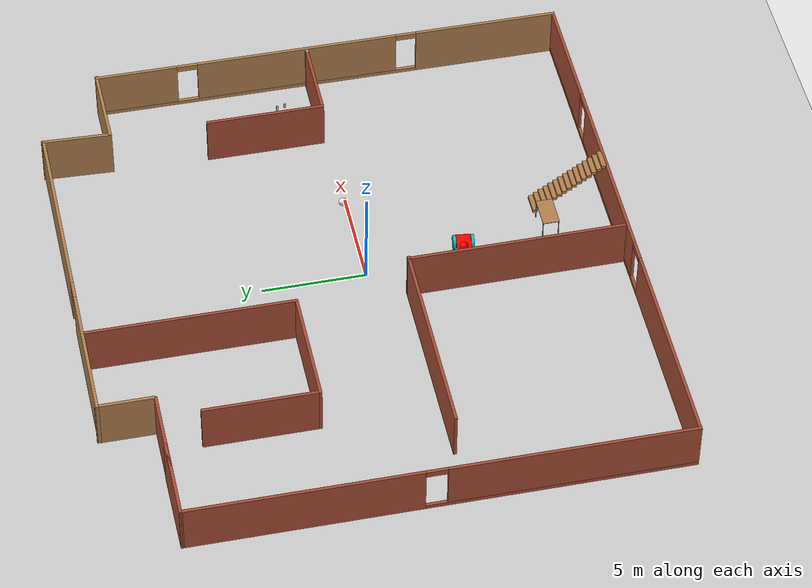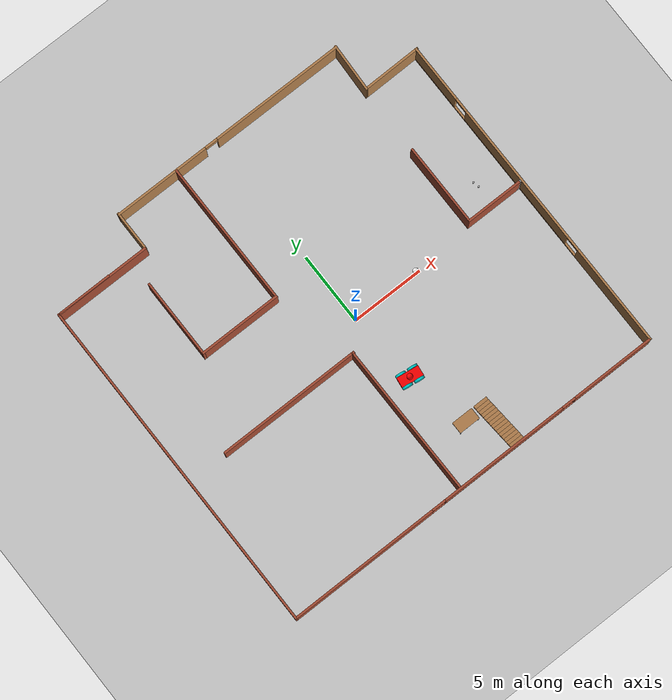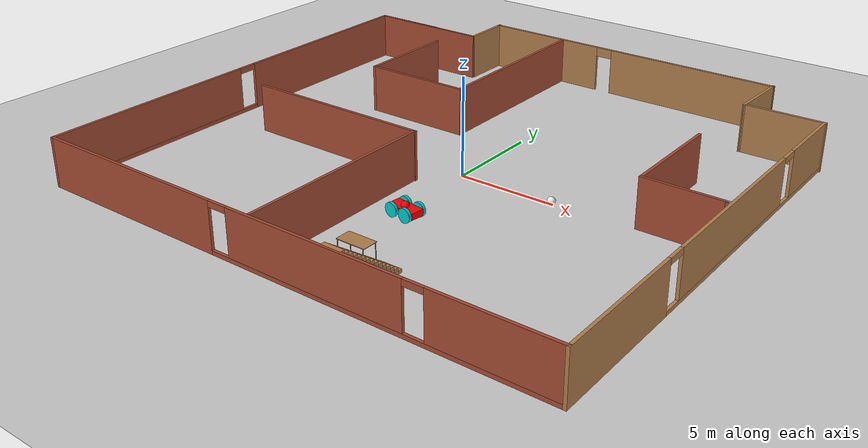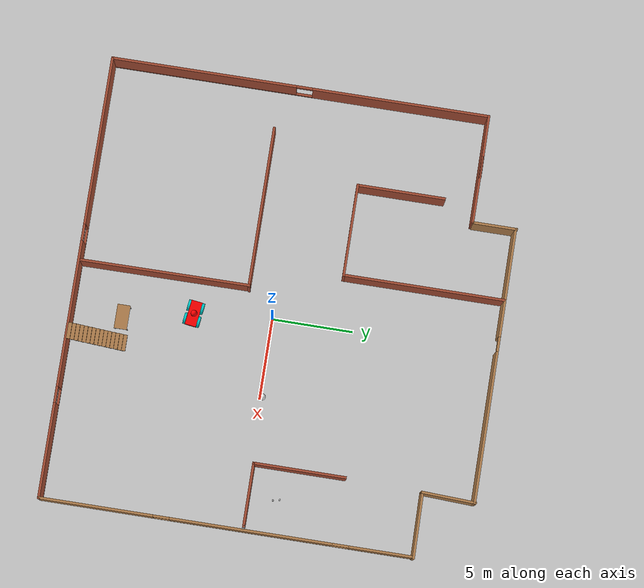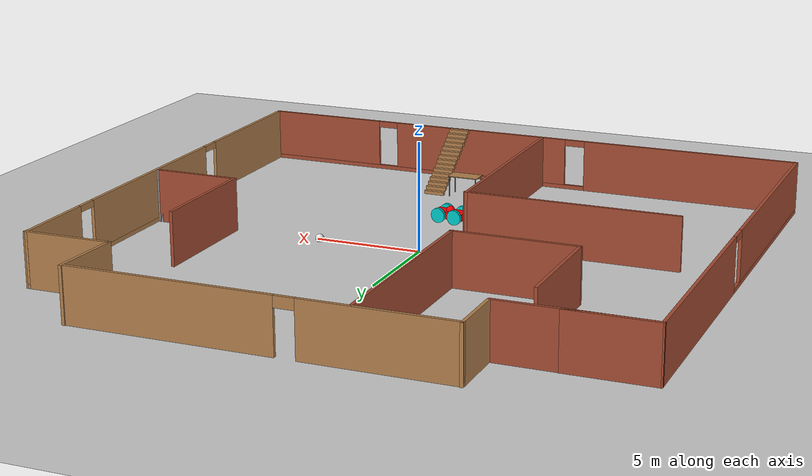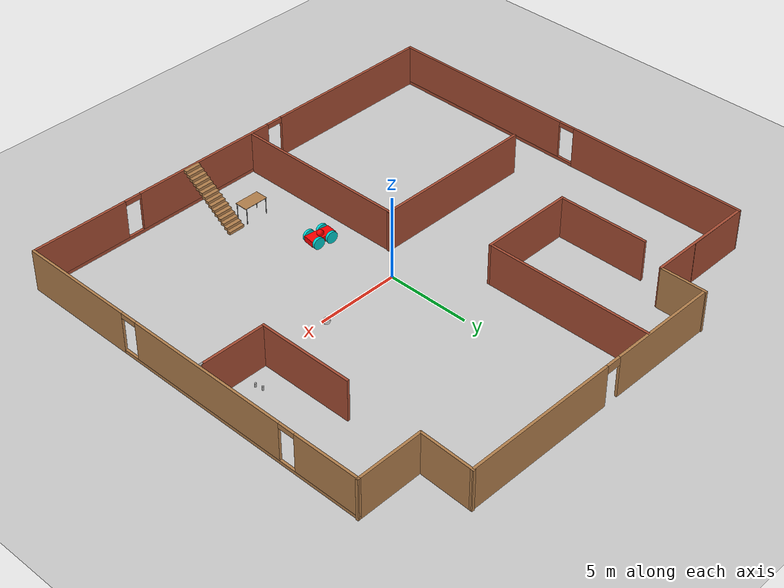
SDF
<sdf version="1.6">
 <world name="default">
  <model name="ground_plane">
   <static>1</static>
   <link name="link">
    <collision name="collision">
     <geometry><plane><normal>0 0 1</normal><size>100 100</size></plane></geometry>
     <surface>
      <contact><collide_bitmask>65535</collide_bitmask></contact>
      <friction><ode><mu>100</mu><mu2>50</mu2></ode></friction>
     </surface>
    </collision>
    <visual name="visual">
     <cast_shadows>0</cast_shadows>
     <geometry><plane><normal>0 0 1</normal><size>100 100</size></plane></geometry>
     <material>
      <script><uri>file://media/materials/scripts/gazebo.material</uri><name>Gazebo/Grey</name></script>
     </material>
    </visual>
   </link>
  </model>
  <model name="Office">
   <pose>-0.484509 0.848568 0 0 -0 0</pose>
   <link name="Stairs_0">
    <visual name="Stairs_0_Visual_0">
     <pose>3.3493 -9.60341 0.083333 0 -0 0</pose>
     <geometry><box><size>1 0.233333 0.166667</size></box></geometry>
     <material>
      <script><uri>file://media/materials/scripts/gazebo.material</uri><name>Gazebo/Wood</name></script>
      <ambient>1 1 1 1</ambient>
     </material>
     <meta><layer>0</layer></meta>
    </visual>
    <collision name="Stairs_0_Collision_0">
     <geometry><box><size>1 0.233333 0.166667</size></box></geometry>
     <pose>3.3493 -9.60341 0.083333 0 -0 0</pose>
    </collision>
    <visual name="Stairs_0_Visual_1">
     <pose>3.3493 -9.83674 0.25 0 -0 0</pose>
     <geometry><box><size>1 0.233333 0.166667</size></box></geometry>
     <material>
      <script><uri>file://media/materials/scripts/gazebo.material</uri><name>Gazebo/Wood</name></script>
      <ambient>1 1 1 1</ambient>
     </material>
     <meta><layer>0</layer></meta>
    </visual>
    <collision name="Stairs_0_Collision_1">
     <geometry><box><size>1 0.233333 0.166667</size></box></geometry>
     <pose>3.3493 -9.83674 0.25 0 -0 0</pose>
    </collision>
    <visual name="Stairs_0_Visual_2">
     <pose>3.3493 -10.0701 0.416667 0 -0 0</pose>
     <geometry><box><size>1 0.233333 0.166667</size></box></geometry>
     <material>
      <script><uri>file://media/materials/scripts/gazebo.material</uri><name>Gazebo/Wood</name></script>
      <ambient>1 1 1 1</ambient>
     </material>
     <meta><layer>0</layer></meta>
    </visual>
    <collision name="Stairs_0_Collision_2">
     <geometry><box><size>1 0.233333 0.166667</size></box></geometry>
     <pose>3.3493 -10.0701 0.416667 0 -0 0</pose>
    </collision>
    <visual name="Stairs_0_Visual_3">
     <pose>3.3493 -10.3034 0.583333 0 -0 0</pose>
     <geometry><box><size>1 0.233333 0.166667</size></box></geometry>
     <material>
      <script><uri>file://media/materials/scripts/gazebo.material</uri><name>Gazebo/Wood</name></script>
      <ambient>1 1 1 1</ambient>
     </material>
     <meta><layer>0</layer></meta>
    </visual>
    <collision name="Stairs_0_Collision_3">
     <geometry><box><size>1 0.233333 0.166667</size></box></geometry>
     <pose>3.3493 -10.3034 0.583333 0 -0 0</pose>
    </collision>
    <visual name="Stairs_0_Visual_4">
     <pose>3.3493 -10.5367 0.75 0 -0 0</pose>
     <geometry><box><size>1 0.233333 0.166667</size></box></geometry>
     <material>
      <script><uri>file://media/materials/scripts/gazebo.material</uri><name>Gazebo/Wood</name></script>
      <ambient>1 1 1 1</ambient>
     </material>
     <meta><layer>0</layer></meta>
    </visual>
    <collision name="Stairs_0_Collision_4">
     <geometry><box><size>1 0.233333 0.166667</size></box></geometry>
     <pose>3.3493 -10.5367 0.75 0 -0 0</pose>
    </collision>
    <visual name="Stairs_0_Visual_5">
     <pose>3.3493 -10.7701 0.916667 0 -0 0</pose>
     <geometry><box><size>1 0.233333 0.166667</size></box></geometry>
     <material>
      <script><uri>file://media/materials/scripts/gazebo.material</uri><name>Gazebo/Wood</name></script>
      <ambient>1 1 1 1</ambient>
     </material>
     <meta><layer>0</layer></meta>
    </visual>
    <collision name="Stairs_0_Collision_5">
     <geometry><box><size>1 0.233333 0.166667</size></box></geometry>
     <pose>3.3493 -10.7701 0.916667 0 -0 0</pose>
    </collision>
    <visual name="Stairs_0_Visual_6">
     <pose>3.3493 -11.0034 1.08333 0 -0 0</pose>
     <geometry><box><size>1 0.233333 0.166667</size></box></geometry>
     <material>
      <script><uri>file://media/materials/scripts/gazebo.material</uri><name>Gazebo/Wood</name></script>
      <ambient>1 1 1 1</ambient>
     </material>
     <meta><layer>0</layer></meta>
    </visual>
    <collision name="Stairs_0_Collision_6">
     <geometry><box><size>1 0.233333 0.166667</size></box></geometry>
     <pose>3.3493 -11.0034 1.08333 0 -0 0</pose>
    </collision>
    <visual name="Stairs_0_Visual_7">
     <pose>3.3493 -11.2367 1.25 0 -0 0</pose>
     <geometry><box><size>1 0.233333 0.166667</size></box></geometry>
     <material>
      <script><uri>file://media/materials/scripts/gazebo.material</uri><name>Gazebo/Wood</name></script>
      <ambient>1 1 1 1</ambient>
     </material>
     <meta><layer>0</layer></meta>
    </visual>
    <collision name="Stairs_0_Collision_7">
     <geometry><box><size>1 0.233333 0.166667</size></box></geometry>
     <pose>3.3493 -11.2367 1.25 0 -0 0</pose>
    </collision>
    <visual name="Stairs_0_Visual_8">
     <pose>3.3493 -11.4701 1.41667 0 -0 0</pose>
     <geometry><box><size>1 0.233333 0.166667</size></box></geometry>
     <material>
      <script><uri>file://media/materials/scripts/gazebo.material</uri><name>Gazebo/Wood</name></script>
      <ambient>1 1 1 1</ambient>
     </material>
     <meta><layer>0</layer></meta>
    </visual>
    <collision name="Stairs_0_Collision_8">
     <geometry><box><size>1 0.233333 0.166667</size></box></geometry>
     <pose>3.3493 -11.4701 1.41667 0 -0 0</pose>
    </collision>
    <visual name="Stairs_0_Visual_9">
     <pose>3.3493 -11.7034 1.58333 0 -0 0</pose>
     <geometry><box><size>1 0.233333 0.166667</size></box></geometry>
     <material>
      <script><uri>file://media/materials/scripts/gazebo.material</uri><name>Gazebo/Wood</name></script>
      <ambient>1 1 1 1</ambient>
     </material>
     <meta><layer>0</layer></meta>
    </visual>
    <collision name="Stairs_0_Collision_9">
     <geometry><box><size>1 0.233333 0.166667</size></box></geometry>
     <pose>3.3493 -11.7034 1.58333 0 -0 0</pose>
    </collision>
    <visual name="Stairs_0_Visual_10">
     <pose>3.3493 -11.9367 1.75 0 -0 0</pose>
     <geometry><box><size>1 0.233333 0.166667</size></box></geometry>
     <material>
      <script><uri>file://media/materials/scripts/gazebo.material</uri><name>Gazebo/Wood</name></script>
      <ambient>1 1 1 1</ambient>
     </material>
     <meta><layer>0</layer></meta>
    </visual>
    <collision name="Stairs_0_Collision_10">
     <geometry><box><size>1 0.233333 0.166667</size></box></geometry>
     <pose>3.3493 -11.9367 1.75 0 -0 0</pose>
    </collision>
    <visual name="Stairs_0_Visual_11">
     <pose>3.3493 -12.1701 1.91667 0 -0 0</pose>
     <geometry><box><size>1 0.233333 0.166667</size></box></geometry>
     <material>
      <script><uri>file://media/materials/scripts/gazebo.material</uri><name>Gazebo/Wood</name></script>
      <ambient>1 1 1 1</ambient>
     </material>
     <meta><layer>0</layer></meta>
    </visual>
    <collision name="Stairs_0_Collision_11">
     <geometry><box><size>1 0.233333 0.166667</size></box></geometry>
     <pose>3.3493 -12.1701 1.91667 0 -0 0</pose>
    </collision>
    <visual name="Stairs_0_Visual_12">
     <pose>3.3493 -12.4034 2.08333 0 -0 0</pose>
     <geometry><box><size>1 0.233333 0.166667</size></box></geometry>
     <material>
      <script><uri>file://media/materials/scripts/gazebo.material</uri><name>Gazebo/Wood</name></script>
      <ambient>1 1 1 1</ambient>
     </material>
     <meta><layer>0</layer></meta>
    </visual>
    <collision name="Stairs_0_Collision_12">
     <geometry><box><size>1 0.233333 0.166667</size></box></geometry>
     <pose>3.3493 -12.4034 2.08333 0 -0 0</pose>
    </collision>
    <visual name="Stairs_0_Visual_13">
     <pose>3.3493 -12.6367 2.25 0 -0 0</pose>
     <geometry><box><size>1 0.233333 0.166667</size></box></geometry>
     <material>
      <script><uri>file://media/materials/scripts/gazebo.material</uri><name>Gazebo/Wood</name></script>
      <ambient>1 1 1 1</ambient>
     </material>
     <meta><layer>0</layer></meta>
    </visual>
    <collision name="Stairs_0_Collision_13">
     <geometry><box><size>1 0.233333 0.166667</size></box></geometry>
     <pose>3.3493 -12.6367 2.25 0 -0 0</pose>
    </collision>
    <visual name="Stairs_0_Visual_14">
     <pose>3.3493 -12.8701 2.41667 0 -0 0</pose>
     <geometry><box><size>1 0.233333 0.166667</size></box></geometry>
     <material>
      <script><uri>file://media/materials/scripts/gazebo.material</uri><name>Gazebo/Wood</name></script>
      <ambient>1 1 1 1</ambient>
     </material>
     <meta><layer>0</layer></meta>
    </visual>
    <collision name="Stairs_0_Collision_14">
     <geometry><box><size>1 0.233333 0.166667</size></box></geometry>
     <pose>3.3493 -12.8701 2.41667 0 -0 0</pose>
    </collision>
   </link>
   <link name="Wall_0">
    <pose>-13.6665 -1.34581 0 0 -0 -1.5708</pose>
    <visual name="Wall_0_Visual_0">
     <pose>-6.25709 0 1.25 0 -0 0</pose>
     <geometry><box><size>10.9858 0.15 2.5</size></box></geometry>
     <material>
      <script><uri>file://media/materials/scripts/gazebo.material</uri><name>Gazebo/Bricks</name></script>
      <ambient>0.435294 0.796078 0.67451 1</ambient>
     </material>
     <meta><layer>0</layer></meta>
    </visual>
    <collision name="Wall_0_Collision_0">
     <geometry><box><size>10.9858 0.15 2.5</size></box></geometry>
     <pose>-6.25709 0 1.25 0 -0 0</pose>
    </collision>
    <visual name="Wall_0_Visual_1">
     <pose>5.49291 0 0.1 0 -0 0</pose>
     <geometry><box><size>12.5142 0.15 0.2</size></box></geometry>
     <material>
      <script><uri>file://media/materials/scripts/gazebo.material</uri><name>Gazebo/Bricks</name></script>
      <ambient>0.435294 0.796078 0.67451 1</ambient>
     </material>
     <meta><layer>0</layer></meta>
    </visual>
    <collision name="Wall_0_Collision_1">
     <geometry><box><size>12.5142 0.15 0.2</size></box></geometry>
     <pose>5.49291 0 0.1 0 -0 0</pose>
    </collision>
    <visual name="Wall_0_Visual_2">
     <pose>5.99291 0 1.35 0 -0 0</pose>
     <geometry><box><size>11.5142 0.15 2.3</size></box></geometry>
     <material>
      <script><uri>file://media/materials/scripts/gazebo.material</uri><name>Gazebo/Bricks</name></script>
      <ambient>0.435294 0.796078 0.67451 1</ambient>
     </material>
     <meta><layer>0</layer></meta>
    </visual>
    <collision name="Wall_0_Collision_2">
     <geometry><box><size>11.5142 0.15 2.3</size></box></geometry>
     <pose>5.99291 0 1.35 0 -0 0</pose>
    </collision>
    <visual name="Wall_0_Visual_3">
     <pose>-0.264183 0 2.35 0 -0 0</pose>
     <geometry><box><size>1 0.15 0.3</size></box></geometry>
     <material>
      <script><uri>file://media/materials/scripts/gazebo.material</uri><name>Gazebo/Bricks</name></script>
      <ambient>0.435294 0.796078 0.67451 1</ambient>
     </material>
     <meta><layer>0</layer></meta>
    </visual>
    <collision name="Wall_0_Collision_3">
     <geometry><box><size>1 0.15 0.3</size></box></geometry>
     <pose>-0.264183 0 2.35 0 -0 0</pose>
    </collision>
   </link>
   <link name="Wall_1">
    <pose>-0.000233 -13.0208 0 0 -0 0</pose>
    <visual name="Wall_1_Visual_0">
     <pose>-8.46246 0 1.25 0 -0 0</pose>
     <geometry><box><size>10.4647 0.15 2.5</size></box></geometry>
     <material>
      <script><uri>file://media/materials/scripts/gazebo.material</uri><name>Gazebo/Bricks</name></script>
      <ambient>0.435294 0.796078 0.67451 1</ambient>
     </material>
     <meta><layer>0</layer></meta>
    </visual>
    <collision name="Wall_1_Collision_0">
     <geometry><box><size>10.4647 0.15 2.5</size></box></geometry>
     <pose>-8.46246 0 1.25 0 -0 0</pose>
    </collision>
    <visual name="Wall_1_Visual_1">
     <pose>5.23233 0 0.1 0 -0 0</pose>
     <geometry><box><size>16.9249 0.15 0.2</size></box></geometry>
     <material>
      <script><uri>file://media/materials/scripts/gazebo.material</uri><name>Gazebo/Bricks</name></script>
      <ambient>0.435294 0.796078 0.67451 1</ambient>
     </material>
     <meta><layer>0</layer></meta>
    </visual>
    <collision name="Wall_1_Collision_1">
     <geometry><box><size>16.9249 0.15 0.2</size></box></geometry>
     <pose>5.23233 0 0.1 0 -0 0</pose>
    </collision>
    <visual name="Wall_1_Visual_2">
     <pose>2.28696 0 1.35 0 -0 0</pose>
     <geometry><box><size>9.0342 0.15 2.3</size></box></geometry>
     <material>
      <script><uri>file://media/materials/scripts/gazebo.material</uri><name>Gazebo/Bricks</name></script>
      <ambient>0.435294 0.796078 0.67451 1</ambient>
     </material>
     <meta><layer>0</layer></meta>
    </visual>
    <collision name="Wall_1_Collision_2">
     <geometry><box><size>9.0342 0.15 2.3</size></box></geometry>
     <pose>2.28696 0 1.35 0 -0 0</pose>
    </collision>
    <visual name="Wall_1_Visual_3">
     <pose>10.7494 0 1.35 0 -0 0</pose>
     <geometry><box><size>5.89072 0.15 2.3</size></box></geometry>
     <material>
      <script><uri>file://media/materials/scripts/gazebo.material</uri><name>Gazebo/Bricks</name></script>
      <ambient>0.435294 0.796078 0.67451 1</ambient>
     </material>
     <meta><layer>0</layer></meta>
    </visual>
    <collision name="Wall_1_Collision_3">
     <geometry><box><size>5.89072 0.15 2.3</size></box></geometry>
     <pose>10.7494 0 1.35 0 -0 0</pose>
    </collision>
    <visual name="Wall_1_Visual_4">
     <pose>-2.73014 0 2.35 0 -0 0</pose>
     <geometry><box><size>1 0.15 0.3</size></box></geometry>
     <material>
      <script><uri>file://media/materials/scripts/gazebo.material</uri><name>Gazebo/Bricks</name></script>
      <ambient>0.435294 0.796078 0.67451 1</ambient>
     </material>
     <meta><layer>0</layer></meta>
    </visual>
    <collision name="Wall_1_Collision_4">
     <geometry><box><size>1 0.15 0.3</size></box></geometry>
     <pose>-2.73014 0 2.35 0 -0 0</pose>
    </collision>
    <visual name="Wall_1_Visual_5">
     <pose>7.30406 0 2.35 0 -0 0</pose>
     <geometry><box><size>1 0.15 0.3</size></box></geometry>
     <material>
      <script><uri>file://media/materials/scripts/gazebo.material</uri><name>Gazebo/Bricks</name></script>
      <ambient>0.435294 0.796078 0.67451 1</ambient>
     </material>
     <meta><layer>0</layer></meta>
    </visual>
    <collision name="Wall_1_Collision_5">
     <geometry><box><size>1 0.15 0.3</size></box></geometry>
     <pose>7.30406 0 2.35 0 -0 0</pose>
    </collision>
   </link>
   <link name="Wall_10">
    <collision name="Wall_10_Collision">
     <geometry><box><size>10.4723 0.15 2.5</size></box></geometry>
     <pose>0 0 1.25 0 -0 0</pose>
    </collision>
    <visual name="Wall_10_Visual">
     <pose>0 0 1.25 0 -0 0</pose>
     <geometry><box><size>10.4723 0.15 2.5</size></box></geometry>
     <material>
      <script><uri>file://media/materials/scripts/gazebo.material</uri><name>Gazebo/Bricks</name></script>
      <ambient>1 1 1 1</ambient>
     </material>
     <meta><layer>0</layer></meta>
    </visual>
    <pose>-1.06028 -7.69746 0 0 -0 -1.56629</pose>
   </link>
   <link name="Wall_13">
    <collision name="Wall_13_Collision">
     <geometry><box><size>3.95311 0.15 2.5</size></box></geometry>
     <pose>0 0 1.25 0 -0 0</pose>
    </collision>
    <visual name="Wall_13_Visual">
     <pose>0 0 1.25 0 -0 0</pose>
     <geometry><box><size>3.95311 0.15 2.5</size></box></geometry>
     <material>
      <script><uri>file://media/materials/scripts/gazebo.material</uri><name>Gazebo/Bricks</name></script>
      <ambient>1 1 1 1</ambient>
     </material>
     <meta><layer>0</layer></meta>
    </visual>
    <pose>-11.765 10.3398 0 0 -0 -3.13603</pose>
   </link>
   <link name="Wall_14">
    <collision name="Wall_14_Collision">
     <geometry><box><size>6.75 0.15 2.5</size></box></geometry>
     <pose>0 0 1.25 0 -0 0</pose>
    </collision>
    <visual name="Wall_14_Visual">
     <pose>0 0 1.25 0 -0 0</pose>
     <geometry><box><size>6.75 0.15 2.5</size></box></geometry>
     <material>
      <script><uri>file://media/materials/scripts/gazebo.material</uri><name>Gazebo/Bricks</name></script>
      <ambient>1 1 1 1</ambient>
     </material>
     <meta><layer>0</layer></meta>
    </visual>
    <pose>-10.3665 10.3292 0 0 -0 0</pose>
   </link>
   <link name="Wall_16">
    <collision name="Wall_16_Collision">
     <geometry><box><size>5.75 0.15 2.5</size></box></geometry>
     <pose>0 0 1.25 0 -0 0</pose>
    </collision>
    <visual name="Wall_16_Visual">
     <pose>0 0 1.25 0 -0 0</pose>
     <geometry><box><size>5.75 0.15 2.5</size></box></geometry>
     <material>
      <script><uri>file://media/materials/scripts/gazebo.material</uri><name>Gazebo/Bricks</name></script>
      <ambient>1 1 1 1</ambient>
     </material>
     <meta><layer>0</layer></meta>
    </visual>
    <pose>9.53698 2.24663 0 0 -0 -1.5708</pose>
   </link>
   <link name="Wall_17">
    <collision name="Wall_17_Collision">
     <geometry><box><size>4 0.15 2.5</size></box></geometry>
     <pose>0 0 1.25 0 -0 0</pose>
    </collision>
    <visual name="Wall_17_Visual">
     <pose>0 0 1.25 0 -0 0</pose>
     <geometry><box><size>4 0.15 2.5</size></box></geometry>
     <material>
      <script><uri>file://media/materials/scripts/gazebo.material</uri><name>Gazebo/Bricks</name></script>
      <ambient>1 1 1 1</ambient>
     </material>
     <meta><layer>0</layer></meta>
    </visual>
    <pose>11.462 -0.55337 0 0 -0 0</pose>
   </link>
   <link name="Wall_18">
    <collision name="Wall_18_Collision">
     <geometry><box><size>0.25 0.15 2.5</size></box></geometry>
     <pose>0 0 1.25 0 -0 0</pose>
    </collision>
    <visual name="Wall_18_Visual">
     <pose>0 0 1.25 0 -0 0</pose>
     <geometry><box><size>0.25 0.15 2.5</size></box></geometry>
     <material>
      <script><uri>file://media/materials/scripts/gazebo.material</uri><name>Gazebo/Grey</name></script>
      <ambient>1 1 1 1</ambient>
     </material>
     <meta><layer>0</layer></meta>
    </visual>
    <pose>13.437 -0.55337 0 0 -0 0</pose>
   </link>
   <link name="Wall_2">
    <pose>13.6196 -1.59581 0 0 -0 1.5708</pose>
    <visual name="Wall_2_Visual_0">
     <pose>-7.98251 0 1.25 0 -0 0</pose>
     <geometry><box><size>7.03499 0.15 2.5</size></box></geometry>
     <material>
      <script><uri>file://media/materials/scripts/gazebo.material</uri><name>Gazebo/Wood</name></script>
      <ambient>1 1 1 1</ambient>
     </material>
     <meta><layer>0</layer></meta>
    </visual>
    <collision name="Wall_2_Collision_0">
     <geometry><box><size>7.03499 0.15 2.5</size></box></geometry>
     <pose>-7.98251 0 1.25 0 -0 0</pose>
    </collision>
    <visual name="Wall_2_Visual_1">
     <pose>3.51749 0 0.1 0 -0 0</pose>
     <geometry><box><size>15.965 0.15 0.2</size></box></geometry>
     <material>
      <script><uri>file://media/materials/scripts/gazebo.material</uri><name>Gazebo/Wood</name></script>
      <ambient>1 1 1 1</ambient>
     </material>
     <meta><layer>0</layer></meta>
    </visual>
    <collision name="Wall_2_Collision_1">
     <geometry><box><size>15.965 0.15 0.2</size></box></geometry>
     <pose>3.51749 0 0.1 0 -0 0</pose>
    </collision>
    <visual name="Wall_2_Visual_2">
     <pose>1.50191 0 1.35 0 -0 0</pose>
     <geometry><box><size>9.93385 0.15 2.3</size></box></geometry>
     <material>
      <script><uri>file://media/materials/scripts/gazebo.material</uri><name>Gazebo/Wood</name></script>
      <ambient>1 1 1 1</ambient>
     </material>
     <meta><layer>0</layer></meta>
    </visual>
    <collision name="Wall_2_Collision_2">
     <geometry><box><size>9.93385 0.15 2.3</size></box></geometry>
     <pose>1.50191 0 1.35 0 -0 0</pose>
    </collision>
    <visual name="Wall_2_Visual_3">
     <pose>9.48442 0 1.35 0 -0 0</pose>
     <geometry><box><size>4.03116 0.15 2.3</size></box></geometry>
     <material>
      <script><uri>file://media/materials/scripts/gazebo.material</uri><name>Gazebo/Wood</name></script>
      <ambient>1 1 1 1</ambient>
     </material>
     <meta><layer>0</layer></meta>
    </visual>
    <collision name="Wall_2_Collision_3">
     <geometry><box><size>4.03116 0.15 2.3</size></box></geometry>
     <pose>9.48442 0 1.35 0 -0 0</pose>
    </collision>
    <visual name="Wall_2_Visual_4">
     <pose>-3.96501 0 2.35 0 -0 0</pose>
     <geometry><box><size>1 0.15 0.3</size></box></geometry>
     <material>
      <script><uri>file://media/materials/scripts/gazebo.material</uri><name>Gazebo/Wood</name></script>
      <ambient>1 1 1 1</ambient>
     </material>
     <meta><layer>0</layer></meta>
    </visual>
    <collision name="Wall_2_Collision_4">
     <geometry><box><size>1 0.15 0.3</size></box></geometry>
     <pose>-3.96501 0 2.35 0 -0 0</pose>
    </collision>
    <visual name="Wall_2_Visual_5">
     <pose>6.96884 0 2.35 0 -0 0</pose>
     <geometry><box><size>1 0.15 0.3</size></box></geometry>
     <material>
      <script><uri>file://media/materials/scripts/gazebo.material</uri><name>Gazebo/Wood</name></script>
      <ambient>1 1 1 1</ambient>
     </material>
     <meta><layer>0</layer></meta>
    </visual>
    <collision name="Wall_2_Collision_5">
     <geometry><box><size>1 0.15 0.3</size></box></geometry>
     <pose>6.96884 0 2.35 0 -0 0</pose>
    </collision>
   </link>
   <link name="Wall_20">
    <collision name="Wall_20_Collision">
     <geometry><box><size>10 0.15 2.5</size></box></geometry>
     <pose>0 0 1.25 0 -0 0</pose>
    </collision>
    <visual name="Wall_20_Visual">
     <pose>0 0 1.25 0 -0 0</pose>
     <geometry><box><size>10 0.15 2.5</size></box></geometry>
     <material>
      <script><uri>file://media/materials/scripts/gazebo.material</uri><name>Gazebo/Bricks</name></script>
      <ambient>1 1 1 1</ambient>
     </material>
     <meta><layer>0</layer></meta>
    </visual>
    <pose>-2.60576 7.98417 0 0 -0 -1.5708</pose>
   </link>
   <link name="Wall_21">
    <collision name="Wall_21_Collision">
     <geometry><box><size>5.75 0.15 2.5</size></box></geometry>
     <pose>0 0 1.25 0 -0 0</pose>
    </collision>
    <visual name="Wall_21_Visual">
     <pose>0 0 1.25 0 -0 0</pose>
     <geometry><box><size>5.75 0.15 2.5</size></box></geometry>
     <material>
      <script><uri>file://media/materials/scripts/gazebo.material</uri><name>Gazebo/Bricks</name></script>
      <ambient>1 1 1 1</ambient>
     </material>
     <meta><layer>0</layer></meta>
    </visual>
    <pose>-5.40576 3.05917 0 0 -0 3.14159</pose>
   </link>
   <link name="Wall_22">
    <collision name="Wall_22_Collision">
     <geometry><box><size>5.5 0.15 2.5</size></box></geometry>
     <pose>0 0 1.25 0 -0 0</pose>
    </collision>
    <visual name="Wall_22_Visual">
     <pose>0 0 1.25 0 -0 0</pose>
     <geometry><box><size>5.5 0.15 2.5</size></box></geometry>
     <material>
      <script><uri>file://media/materials/scripts/gazebo.material</uri><name>Gazebo/Bricks</name></script>
      <ambient>1 1 1 1</ambient>
     </material>
     <meta><layer>0</layer></meta>
    </visual>
    <pose>-8.20576 5.73417 0 0 -0 1.5708</pose>
   </link>
   <link name="Wall_3">
    <collision name="Wall_3_Collision">
     <geometry><box><size>4.08454 0.15 2.5</size></box></geometry>
     <pose>0 0 1.25 0 -0 0</pose>
    </collision>
    <visual name="Wall_3_Visual">
     <pose>0 0 1.25 0 -0 0</pose>
     <geometry><box><size>4.08454 0.15 2.5</size></box></geometry>
     <material>
      <script><uri>file://media/materials/scripts/gazebo.material</uri><name>Gazebo/Wood</name></script>
      <ambient>1 1 1 1</ambient>
     </material>
     <meta><layer>0</layer></meta>
    </visual>
    <pose>11.6989 9.80593 0 0 -0 -3.12977</pose>
   </link>
   <link name="Wall_4">
    <collision name="Wall_4_Collision">
     <geometry><box><size>3.38799 0.15 2.5</size></box></geometry>
     <pose>0 0 1.25 0 -0 0</pose>
    </collision>
    <visual name="Wall_4_Visual">
     <pose>0 0 1.25 0 -0 0</pose>
     <geometry><box><size>3.38799 0.15 2.5</size></box></geometry>
     <material>
      <script><uri>file://media/materials/scripts/gazebo.material</uri><name>Gazebo/Wood</name></script>
      <ambient>1 1 1 1</ambient>
     </material>
     <meta><layer>0</layer></meta>
    </visual>
    <pose>9.75508 11.4002 0 0 -0 1.52768</pose>
   </link>
   <link name="Wall_5">
    <pose>1.39986 12.9711 0 0 -0 3.14159</pose>
    <visual name="Wall_5_Visual_0">
     <pose>-3.82584 0 1.25 0 -0 0</pose>
     <geometry><box><size>9.34832 0.15 2.5</size></box></geometry>
     <material>
      <script><uri>file://media/materials/scripts/gazebo.material</uri><name>Gazebo/Wood</name></script>
      <ambient>1 1 1 1</ambient>
     </material>
     <meta><layer>0</layer></meta>
    </visual>
    <collision name="Wall_5_Collision_0">
     <geometry><box><size>9.34832 0.15 2.5</size></box></geometry>
     <pose>-3.82584 0 1.25 0 -0 0</pose>
    </collision>
    <visual name="Wall_5_Visual_1">
     <pose>5.12416 0 1.25 0 -0 0</pose>
     <geometry><box><size>6.75168 0.15 2.5</size></box></geometry>
     <material>
      <script><uri>file://media/materials/scripts/gazebo.material</uri><name>Gazebo/Wood</name></script>
      <ambient>1 1 1 1</ambient>
     </material>
     <meta><layer>0</layer></meta>
    </visual>
    <collision name="Wall_5_Collision_1">
     <geometry><box><size>6.75168 0.15 2.5</size></box></geometry>
     <pose>5.12416 0 1.25 0 -0 0</pose>
    </collision>
    <visual name="Wall_5_Visual_2">
     <pose>1.29832 0 2.25 0 -0 0</pose>
     <geometry><box><size>0.9 0.15 0.5</size></box></geometry>
     <material>
      <script><uri>file://media/materials/scripts/gazebo.material</uri><name>Gazebo/Wood</name></script>
      <ambient>1 1 1 1</ambient>
     </material>
     <meta><layer>0</layer></meta>
    </visual>
    <collision name="Wall_5_Collision_2">
     <geometry><box><size>0.9 0.15 0.5</size></box></geometry>
     <pose>1.29832 0 2.25 0 -0 0</pose>
    </collision>
   </link>
   <link name="Wall_6">
    <collision name="Wall_6_Collision">
     <geometry><box><size>2.75 0.15 2.5</size></box></geometry>
     <pose>0 0 1.25 0 -0 0</pose>
    </collision>
    <visual name="Wall_6_Visual">
     <pose>0 0 1.25 0 -0 0</pose>
     <geometry><box><size>2.75 0.15 2.5</size></box></geometry>
     <material>
      <script><uri>file://media/materials/scripts/gazebo.material</uri><name>Gazebo/Wood</name></script>
      <ambient>1 1 1 1</ambient>
     </material>
     <meta><layer>0</layer></meta>
    </visual>
    <pose>-7.02514 11.7176 0 0 -0 -1.5708</pose>
   </link>
   <link name="Wall_9">
    <collision name="Wall_9_Collision">
     <geometry><box><size>10 0.15 2.5</size></box></geometry>
     <pose>0 0 1.25 0 -0 0</pose>
    </collision>
    <visual name="Wall_9_Visual">
     <pose>0 0 1.25 0 -0 0</pose>
     <geometry><box><size>10 0.15 2.5</size></box></geometry>
     <material>
      <script><uri>file://media/materials/scripts/gazebo.material</uri><name>Gazebo/Bricks</name></script>
      <ambient>1 1 1 1</ambient>
     </material>
     <meta><layer>0</layer></meta>
    </visual>
    <pose>-5.96202 -2.53677 0 0 -0 0</pose>
   </link>
   <static>1</static>
  </model>
  <model name="table_clone">
   <static>1</static>
   <link name="link">
    <collision name="surface">
     <pose>0 0 1 0 -0 0</pose>
     <geometry><box><size>1.5 0.8 0.03</size></box></geometry>
     <surface><friction><ode><mu>0.6</mu><mu2>0.6</mu2></ode></friction></surface>
    </collision>
    <visual name="visual1">
     <pose>0 0 1 0 -0 0</pose>
     <geometry><box><size>1.5 0.8 0.03</size></box></geometry>
     <material>
      <script><uri>file://media/materials/scripts/gazebo.material</uri><name>Gazebo/Wood</name></script>
     </material>
    </visual>
    <collision name="front_left_leg">
     <pose>0.68 0.38 0.5 0 -0 0</pose>
     <geometry><cylinder><radius>0.02</radius><length>1</length></cylinder></geometry>
    </collision>
    <visual name="front_left_leg">
     <pose>0.68 0.38 0.5 0 -0 0</pose>
     <geometry><cylinder><radius>0.02</radius><length>1</length></cylinder></geometry>
     <material>
      <script><uri>file://media/materials/scripts/gazebo.material</uri><name>Gazebo/Grey</name></script>
     </material>
    </visual>
    <collision name="front_right_leg">
     <pose>0.68 -0.38 0.5 0 -0 0</pose>
     <geometry><cylinder><radius>0.02</radius><length>1</length></cylinder></geometry>
    </collision>
    <visual name="front_right_leg">
     <pose>0.68 -0.38 0.5 0 -0 0</pose>
     <geometry><cylinder><radius>0.02</radius><length>1</length></cylinder></geometry>
     <material>
      <script><uri>file://media/materials/scripts/gazebo.material</uri><name>Gazebo/Grey</name></script>
     </material>
    </visual>
    <collision name="back_right_leg">
     <pose>-0.68 -0.38 0.5 0 -0 0</pose>
     <geometry><cylinder><radius>0.02</radius><length>1</length></cylinder></geometry>
    </collision>
    <visual name="back_right_leg">
     <pose>-0.68 -0.38 0.5 0 -0 0</pose>
     <geometry><cylinder><radius>0.02</radius><length>1</length></cylinder></geometry>
     <material>
      <script><uri>file://media/materials/scripts/gazebo.material</uri><name>Gazebo/Grey</name></script>
     </material>
    </visual>
    <collision name="back_left_leg">
     <pose>-0.68 0.38 0.5 0 -0 0</pose>
     <geometry><cylinder><radius>0.02</radius><length>1</length></cylinder></geometry>
    </collision>
    <visual name="back_left_leg">
     <pose>-0.68 0.38 0.5 0 -0 0</pose>
     <geometry><cylinder><radius>0.02</radius><length>1</length></cylinder></geometry>
     <material>
      <script><uri>file://media/materials/scripts/gazebo.material</uri><name>Gazebo/Grey</name></script>
     </material>
    </visual>
   </link>
   <pose>1.38828 -9.08582 0 0 -0 0</pose>
  </model>
  <model name="beer">
   <link name="link">
    <pose>0 0 0.115 0 -0 0</pose>
    <inertial>
     <mass>0.39</mass>
     <inertia><ixx>0.00058</ixx><ixy>0</ixy><ixz>0</ixz><iyy>0.00058</iyy><iyz>0</iyz><izz>0.00019</izz></inertia>
    </inertial>
    <collision name="collision">
     <geometry><cylinder><radius>0.055</radius><length>0.23</length></cylinder></geometry>
    </collision>
    <visual name="visual">
     <geometry><cylinder><radius>0.055</radius><length>0.23</length></cylinder></geometry>
     <material>
      <script>
       <uri>model://beer/materials/scripts</uri>
       <uri>model://beer/materials/textures</uri>
       <name>Beer/Diffuse</name>
      </script>
     </material>
    </visual>
   </link>
   <pose>10.9311 2.18552 0.775001 7e-06 -1.5e-05 0.002639</pose>
  </model>
  <model name="beer_clone_0">
   <link name="link">
    <pose>0 0 0.115 0 -0 0</pose>
    <inertial>
     <mass>0.39</mass>
     <inertia><ixx>0.00058</ixx><ixy>0</ixy><ixz>0</ixz><iyy>0.00058</iyy><iyz>0</iyz><izz>0.00019</izz></inertia>
    </inertial>
    <collision name="collision">
     <geometry><cylinder><radius>0.055</radius><length>0.23</length></cylinder></geometry>
    </collision>
    <visual name="visual">
     <geometry><cylinder><radius>0.055</radius><length>0.23</length></cylinder></geometry>
     <material>
      <script>
       <uri>model://beer/materials/scripts</uri>
       <uri>model://beer/materials/textures</uri>
       <name>Beer/Diffuse</name>
      </script>
     </material>
    </visual>
   </link>
   <pose>11.0273 1.7807 0.775003 1.2e-05 5e-05 0.000279</pose>
  </model>
  <model name="4wheeler">
   <link name="link_0">
    <inertial>
     <mass>1.35085</mass>
     <inertia>
      <ixx>0.277852</ixx>
      <ixy>0</ixy>
      <ixz>0</ixz>
      <iyy>0.0669791</iyy>
      <iyz>0</iyz>
      <izz>0.321192</izz>
     </inertia>
    </inertial>
    <pose>0.011609 -0.00021 0.4 0 -0 0</pose>
    <visual name="visual">
     <geometry><box><size>0.7 1.53729 0.324029</size></box></geometry>
     <material>
      <lighting>1</lighting>
      <script><uri>file://media/materials/scripts/gazebo.material</uri><name>Gazebo/Grey</name></script>
      <shader type="pixel"><normal_map>__default__</normal_map></shader>
      <ambient>1 0 0 1</ambient>
      <diffuse>0.7 0.7 0.7 1</diffuse>
      <specular>0.01 0.01 0.01 1</specular>
      <emissive>0 0 0 1</emissive>
     </material>
    </visual>
    <collision name="collision">
     <geometry><box><size>0.7 1.53729 0.324029</size></box></geometry>
     <surface>
      <friction>
       <ode><mu>1</mu><mu2>1</mu2><fdir1>0 0 0</fdir1><slip1>0</slip1><slip2>0</slip2></ode>
       <torsional>
        <coefficient>1</coefficient>
        <patch_radius>0</patch_radius>
        <surface_radius>0</surface_radius>
        <use_patch_radius>1</use_patch_radius>
        <ode><slip>0</slip></ode>
       </torsional>
      </friction>
      <bounce><restitution_coefficient>0</restitution_coefficient><threshold>1e+06</threshold></bounce>
      <contact>
       <collide_without_contact>0</collide_without_contact>
       <collide_without_contact_bitmask>1</collide_without_contact_bitmask>
       <collide_bitmask>1</collide_bitmask>
       <ode>
        <soft_cfm>0</soft_cfm>
        <soft_erp>0.2</soft_erp>
        <kp>1e+13</kp>
        <kd>1</kd>
        <max_vel>0.01</max_vel>
        <min_depth>0</min_depth>
       </ode>
       <bullet>
        <split_impulse>1</split_impulse>
        <split_impulse_penetration_threshold>-0.01</split_impulse_penetration_threshold>
        <soft_cfm>0</soft_cfm>
        <soft_erp>0.2</soft_erp>
        <kp>1e+13</kp>
        <kd>1</kd>
       </bullet>
      </contact>
     </surface>
    </collision>
   </link>
   <link name="link_1_clone">
    <inertial>
     <mass>1</mass>
     <inertia><ixx>0.145833</ixx><ixy>0</ixy><ixz>0</ixz><iyy>0.145833</iyy><iyz>0</iyz><izz>0.125</izz></inertia>
    </inertial>
    <pose>0.44037 0.416058 0.4 1.5707 0 1.5707</pose>
    <visual name="visual">
     <geometry><cylinder><radius>0.35</radius><length>0.15</length></cylinder></geometry>
     <material>
      <lighting>1</lighting>
      <script><uri>file://media/materials/scripts/gazebo.material</uri><name>Gazebo/Grey</name></script>
      <shader type="pixel"><normal_map>__default__</normal_map></shader>
      <ambient>0 0.8 0.8 1</ambient>
      <diffuse>0.7 0.7 0.7 1</diffuse>
      <specular>0.01 0.01 0.01 1</specular>
      <emissive>0 0 0 1</emissive>
     </material>
    </visual>
    <collision name="collision">
     <geometry><cylinder><radius>0.35</radius><length>0.15</length></cylinder></geometry>
     <surface>
      <friction>
       <ode><mu>1</mu><mu2>1</mu2><fdir1>0 0 0</fdir1><slip1>0</slip1><slip2>0</slip2></ode>
       <torsional>
        <coefficient>1</coefficient>
        <patch_radius>0</patch_radius>
        <surface_radius>0</surface_radius>
        <use_patch_radius>1</use_patch_radius>
        <ode><slip>0</slip></ode>
       </torsional>
      </friction>
      <bounce><restitution_coefficient>0</restitution_coefficient><threshold>1e+06</threshold></bounce>
      <contact>
       <collide_without_contact>0</collide_without_contact>
       <collide_without_contact_bitmask>1</collide_without_contact_bitmask>
       <collide_bitmask>1</collide_bitmask>
       <ode>
        <soft_cfm>0</soft_cfm>
        <soft_erp>0.2</soft_erp>
        <kp>1e+13</kp>
        <kd>1</kd>
        <max_vel>0.01</max_vel>
        <min_depth>0</min_depth>
       </ode>
       <bullet>
        <split_impulse>1</split_impulse>
        <split_impulse_penetration_threshold>-0.01</split_impulse_penetration_threshold>
        <soft_cfm>0</soft_cfm>
        <soft_erp>0.2</soft_erp>
        <kp>1e+13</kp>
        <kd>1</kd>
       </bullet>
      </contact>
     </surface>
    </collision>
   </link>
   <link name="link_1_clone_clone">
    <inertial>
     <mass>1</mass>
     <inertia><ixx>0.145833</ixx><ixy>0</ixy><ixz>0</ixz><iyy>0.145833</iyy><iyz>0</iyz><izz>0.125</izz></inertia>
    </inertial>
    <pose>0.431165 -0.424592 0.4 1.5707 0 1.5707</pose>
    <visual name="visual">
     <geometry><cylinder><radius>0.35</radius><length>0.15</length></cylinder></geometry>
     <material>
      <lighting>1</lighting>
      <script><uri>file://media/materials/scripts/gazebo.material</uri><name>Gazebo/Grey</name></script>
      <shader type="pixel"><normal_map>__default__</normal_map></shader>
      <ambient>0 0.8 0.8 1</ambient>
      <diffuse>0.7 0.7 0.7 1</diffuse>
      <specular>0.01 0.01 0.01 1</specular>
      <emissive>0 0 0 1</emissive>
     </material>
    </visual>
    <collision name="collision">
     <geometry><cylinder><radius>0.35</radius><length>0.15</length></cylinder></geometry>
     <surface>
      <friction>
       <ode><mu>1</mu><mu2>1</mu2><fdir1>0 0 0</fdir1><slip1>0</slip1><slip2>0</slip2></ode>
       <torsional>
        <coefficient>1</coefficient>
        <patch_radius>0</patch_radius>
        <surface_radius>0</surface_radius>
        <use_patch_radius>1</use_patch_radius>
        <ode><slip>0</slip></ode>
       </torsional>
      </friction>
      <bounce><restitution_coefficient>0</restitution_coefficient><threshold>1e+06</threshold></bounce>
      <contact>
       <collide_without_contact>0</collide_without_contact>
       <collide_without_contact_bitmask>1</collide_without_contact_bitmask>
       <collide_bitmask>1</collide_bitmask>
       <ode>
        <soft_cfm>0</soft_cfm>
        <soft_erp>0.2</soft_erp>
        <kp>1e+13</kp>
        <kd>1</kd>
        <max_vel>0.01</max_vel>
        <min_depth>0</min_depth>
       </ode>
       <bullet>
        <split_impulse>1</split_impulse>
        <split_impulse_penetration_threshold>-0.01</split_impulse_penetration_threshold>
        <soft_cfm>0</soft_cfm>
        <soft_erp>0.2</soft_erp>
        <kp>1e+13</kp>
        <kd>1</kd>
       </bullet>
      </contact>
     </surface>
    </collision>
   </link>
   <link name="link_1_clone_clone_0">
    <inertial>
     <mass>1</mass>
     <inertia><ixx>0.145833</ixx><ixy>0</ixy><ixz>0</ixz><iyy>0.145833</iyy><iyz>0</iyz><izz>0.125</izz></inertia>
    </inertial>
    <pose>-0.421453 0.42237 0.4 1.5707 0 1.5707</pose>
    <visual name="visual">
     <geometry><cylinder><radius>0.35</radius><length>0.15</length></cylinder></geometry>
     <material>
      <lighting>1</lighting>
      <script><uri>file://media/materials/scripts/gazebo.material</uri><name>Gazebo/Grey</name></script>
      <shader type="pixel"><normal_map>__default__</normal_map></shader>
      <ambient>0 0.8 0.8 1</ambient>
      <diffuse>0.7 0.7 0.7 1</diffuse>
      <specular>0.01 0.01 0.01 1</specular>
      <emissive>0 0 0 1</emissive>
     </material>
    </visual>
    <collision name="collision">
     <geometry><cylinder><radius>0.35</radius><length>0.15</length></cylinder></geometry>
     <surface>
      <friction>
       <ode><mu>1</mu><mu2>1</mu2><fdir1>0 0 0</fdir1><slip1>0</slip1><slip2>0</slip2></ode>
       <torsional>
        <coefficient>1</coefficient>
        <patch_radius>0</patch_radius>
        <surface_radius>0</surface_radius>
        <use_patch_radius>1</use_patch_radius>
        <ode><slip>0</slip></ode>
       </torsional>
      </friction>
      <bounce><restitution_coefficient>0</restitution_coefficient><threshold>1e+06</threshold></bounce>
      <contact>
       <collide_without_contact>0</collide_without_contact>
       <collide_without_contact_bitmask>1</collide_without_contact_bitmask>
       <collide_bitmask>1</collide_bitmask>
       <ode>
        <soft_cfm>0</soft_cfm>
        <soft_erp>0.2</soft_erp>
        <kp>1e+13</kp>
        <kd>1</kd>
        <max_vel>0.01</max_vel>
        <min_depth>0</min_depth>
       </ode>
       <bullet>
        <split_impulse>1</split_impulse>
        <split_impulse_penetration_threshold>-0.01</split_impulse_penetration_threshold>
        <soft_cfm>0</soft_cfm>
        <soft_erp>0.2</soft_erp>
        <kp>1e+13</kp>
        <kd>1</kd>
       </bullet>
      </contact>
     </surface>
    </collision>
   </link>
   <link name="link_1_clone_clone_clone">
    <inertial>
     <mass>1</mass>
     <inertia><ixx>0.145833</ixx><ixy>0</ixy><ixz>0</ixz><iyy>0.145833</iyy><iyz>0</iyz><izz>0.125</izz></inertia>
    </inertial>
    <pose>-0.415948 -0.421035 0.4 1.5707 0 1.5707</pose>
    <visual name="visual">
     <geometry><cylinder><radius>0.35</radius><length>0.15</length></cylinder></geometry>
     <material>
      <lighting>1</lighting>
      <script><uri>file://media/materials/scripts/gazebo.material</uri><name>Gazebo/Grey</name></script>
      <shader type="pixel"><normal_map>__default__</normal_map></shader>
      <ambient>0 0.8 0.8 1</ambient>
      <diffuse>0.7 0.7 0.7 1</diffuse>
      <specular>0.01 0.01 0.01 1</specular>
      <emissive>0 0 0 1</emissive>
     </material>
    </visual>
    <collision name="collision">
     <geometry><cylinder><radius>0.35</radius><length>0.15</length></cylinder></geometry>
     <surface>
      <friction>
       <ode><mu>1</mu><mu2>1</mu2><fdir1>0 0 0</fdir1><slip1>0</slip1><slip2>0</slip2></ode>
       <torsional>
        <coefficient>1</coefficient>
        <patch_radius>0</patch_radius>
        <surface_radius>0</surface_radius>
        <use_patch_radius>1</use_patch_radius>
        <ode><slip>0</slip></ode>
       </torsional>
      </friction>
      <bounce><restitution_coefficient>0</restitution_coefficient><threshold>1e+06</threshold></bounce>
      <contact>
       <collide_without_contact>0</collide_without_contact>
       <collide_without_contact_bitmask>1</collide_without_contact_bitmask>
       <collide_bitmask>1</collide_bitmask>
       <ode>
        <soft_cfm>0</soft_cfm>
        <soft_erp>0.2</soft_erp>
        <kp>1e+13</kp>
        <kd>1</kd>
        <max_vel>0.01</max_vel>
        <min_depth>0</min_depth>
       </ode>
       <bullet>
        <split_impulse>1</split_impulse>
        <split_impulse_penetration_threshold>-0.01</split_impulse_penetration_threshold>
        <soft_cfm>0</soft_cfm>
        <soft_erp>0.2</soft_erp>
        <kp>1e+13</kp>
        <kd>1</kd>
       </bullet>
      </contact>
     </surface>
    </collision>
   </link>
   <link name="link_5">
    <inertial>
     <mass>1</mass>
     <inertia><ixx>0.1</ixx><ixy>0</ixy><ixz>0</ixz><iyy>0.1</iyy><iyz>0</iyz><izz>0.1</izz></inertia>
    </inertial>
    <pose>-0.001788 -0.009431 0.6 0 -0 0</pose>
    <visual name="visual">
     <geometry><sphere><radius>0.2</radius></sphere></geometry>
     <material>
      <lighting>1</lighting>
      <script><uri>file://media/materials/scripts/gazebo.material</uri><name>Gazebo/Grey</name></script>
      <shader type="pixel"><normal_map>__default__</normal_map></shader>
      <ambient>1 0 0 1</ambient>
      <diffuse>0.7 0.7 0.7 1</diffuse>
      <specular>0.01 0.01 0.01 1</specular>
      <emissive>0 0 0 1</emissive>
     </material>
    </visual>
    <collision name="collision">
     <geometry><sphere><radius>0.2</radius></sphere></geometry>
     <surface>
      <friction>
       <ode><mu>1</mu><mu2>1</mu2><fdir1>0 0 0</fdir1><slip1>0</slip1><slip2>0</slip2></ode>
       <torsional>
        <coefficient>1</coefficient>
        <patch_radius>0</patch_radius>
        <surface_radius>0</surface_radius>
        <use_patch_radius>1</use_patch_radius>
        <ode><slip>0</slip></ode>
       </torsional>
      </friction>
      <bounce><restitution_coefficient>0</restitution_coefficient><threshold>1e+06</threshold></bounce>
      <contact>
       <collide_without_contact>0</collide_without_contact>
       <collide_without_contact_bitmask>1</collide_without_contact_bitmask>
       <collide_bitmask>1</collide_bitmask>
       <ode>
        <soft_cfm>0</soft_cfm>
        <soft_erp>0.2</soft_erp>
        <kp>1e+13</kp>
        <kd>1</kd>
        <max_vel>0.01</max_vel>
        <min_depth>0</min_depth>
       </ode>
       <bullet>
        <split_impulse>1</split_impulse>
        <split_impulse_penetration_threshold>-0.01</split_impulse_penetration_threshold>
        <soft_cfm>0</soft_cfm>
        <soft_erp>0.2</soft_erp>
        <kp>1e+13</kp>
        <kd>1</kd>
       </bullet>
      </contact>
     </surface>
    </collision>
   </link>
   <joint name="link_0_JOINT_0" type="revolute">
    <parent>link_0</parent>
    <child>link_1_clone</child>
    <axis>
     <xyz>0 0 1</xyz>
     <use_parent_model_frame>0</use_parent_model_frame>
     <limit>
      <lower>-1.79769e+308</lower>
      <upper>1.79769e+308</upper>
      <effort>-1</effort>
      <velocity>-1</velocity>
     </limit>
     <dynamics>
      <spring_reference>0</spring_reference>
      <spring_stiffness>0</spring_stiffness>
      <damping>0</damping>
      <friction>0</friction>
     </dynamics>
    </axis>
    <physics>
     <ode><limit><cfm>0</cfm><erp>0.2</erp></limit><suspension><cfm>0</cfm><erp>0.2</erp></suspension></ode>
    </physics>
   </joint>
   <joint name="link_0_JOINT_1" type="revolute">
    <parent>link_0</parent>
    <child>link_1_clone_clone</child>
    <axis>
     <xyz>0 0 1</xyz>
     <use_parent_model_frame>0</use_parent_model_frame>
     <limit>
      <lower>-1.79769e+308</lower>
      <upper>1.79769e+308</upper>
      <effort>-1</effort>
      <velocity>-1</velocity>
     </limit>
     <dynamics>
      <spring_reference>0</spring_reference>
      <spring_stiffness>0</spring_stiffness>
      <damping>0</damping>
      <friction>0</friction>
     </dynamics>
    </axis>
    <physics>
     <ode><limit><cfm>0</cfm><erp>0.2</erp></limit><suspension><cfm>0</cfm><erp>0.2</erp></suspension></ode>
    </physics>
   </joint>
   <joint name="link_0_JOINT_2" type="revolute">
    <parent>link_0</parent>
    <child>link_1_clone_clone_clone</child>
    <axis>
     <xyz>0 0 1</xyz>
     <use_parent_model_frame>0</use_parent_model_frame>
     <limit>
      <lower>-1.79769e+308</lower>
      <upper>1.79769e+308</upper>
      <effort>-1</effort>
      <velocity>-1</velocity>
     </limit>
     <dynamics>
      <spring_reference>0</spring_reference>
      <spring_stiffness>0</spring_stiffness>
      <damping>0</damping>
      <friction>0</friction>
     </dynamics>
    </axis>
    <physics>
     <ode><limit><cfm>0</cfm><erp>0.2</erp></limit><suspension><cfm>0</cfm><erp>0.2</erp></suspension></ode>
    </physics>
   </joint>
   <joint name="link_0_JOINT_3" type="revolute">
    <parent>link_0</parent>
    <child>link_1_clone_clone_0</child>
    <axis>
     <xyz>1 0 0</xyz>
     <use_parent_model_frame>0</use_parent_model_frame>
     <limit>
      <lower>-1.79769e+308</lower>
      <upper>1.79769e+308</upper>
      <effort>-1</effort>
      <velocity>-1</velocity>
     </limit>
     <dynamics>
      <spring_reference>0</spring_reference>
      <spring_stiffness>0</spring_stiffness>
      <damping>0</damping>
      <friction>0</friction>
     </dynamics>
    </axis>
    <physics>
     <ode><limit><cfm>0</cfm><erp>0.2</erp></limit><suspension><cfm>0</cfm><erp>0.2</erp></suspension></ode>
    </physics>
   </joint>
   <joint name="link_0_JOINT_4" type="fixed">
    <parent>link_0</parent>
    <child>link_5</child>
    <physics>
     <ode><limit><cfm>0</cfm><erp>0.2</erp></limit><suspension><cfm>0</cfm><erp>0.2</erp></suspension></ode>
    </physics>
   </joint>
   <static>0</static>
   <pose>0.437655 -4.80688 -0.049993 2e-06 -4e-06 -1.69809</pose>
  </model>
  <model name="my_ball">
   <link name="link_0">
    <inertial>
     <mass>1.5</mass>
     <inertia><ixx>0.15</ixx><ixy>0</ixy><ixz>0</ixz><iyy>0.15</iyy><iyz>0</iyz><izz>0.15</izz></inertia>
    </inertial>
    <visual name="visual">
     <geometry><sphere><radius>0.2</radius></sphere></geometry>
     <material>
      <lighting>1</lighting>
      <script><uri>file://media/materials/scripts/gazebo.material</uri><name>Gazebo/White</name></script>
      <shader type="normal_map_object_space"><normal_map>__default__</normal_map></shader>
      <ambient>1 1 1 1</ambient>
      <diffuse>1 1 1 1</diffuse>
      <specular>1 1 1 1</specular>
      <emissive>1 1 1 1</emissive>
     </material>
    </visual>
    <collision name="collision">
     <geometry><sphere><radius>0.2</radius></sphere></geometry>
     <surface>
      <friction>
       <ode><mu>1</mu><mu2>1</mu2><fdir1>0 0 0</fdir1><slip1>0</slip1><slip2>0</slip2></ode>
       <torsional>
        <coefficient>1</coefficient>
        <patch_radius>0</patch_radius>
        <surface_radius>0</surface_radius>
        <use_patch_radius>1</use_patch_radius>
        <ode><slip>0</slip></ode>
       </torsional>
      </friction>
      <bounce><restitution_coefficient>0</restitution_coefficient><threshold>1e+06</threshold></bounce>
      <contact>
       <collide_without_contact>0</collide_without_contact>
       <collide_without_contact_bitmask>1</collide_without_contact_bitmask>
       <collide_bitmask>1</collide_bitmask>
       <ode>
        <soft_cfm>0</soft_cfm>
        <soft_erp>0.2</soft_erp>
        <kp>1e+13</kp>
        <kd>1</kd>
        <max_vel>0.01</max_vel>
        <min_depth>0</min_depth>
       </ode>
       <bullet>
        <split_impulse>1</split_impulse>
        <split_impulse_penetration_threshold>-0.01</split_impulse_penetration_threshold>
        <soft_cfm>0</soft_cfm>
        <soft_erp>0.2</soft_erp>
        <kp>1e+13</kp>
        <kd>1</kd>
       </bullet>
      </contact>
     </surface>
    </collision>
   </link>
   <static>0</static>
   <pose>4.82384 0.146191 0.1 0 -0 0</pose>
  </model>
 </world>
</sdf>
